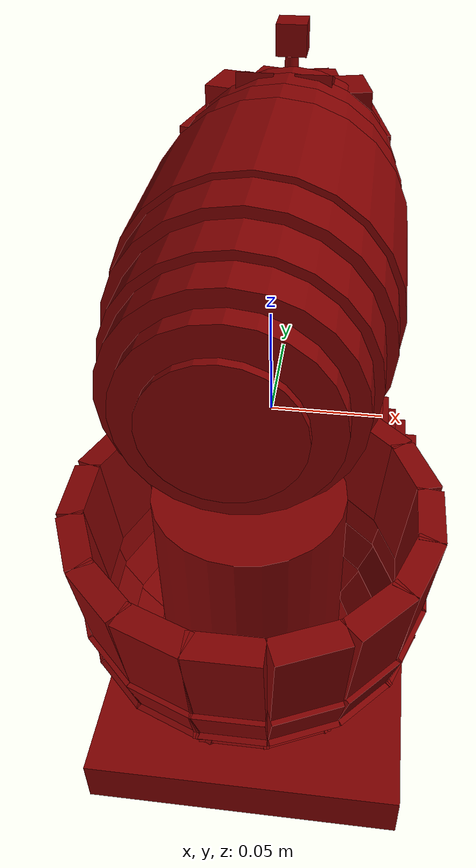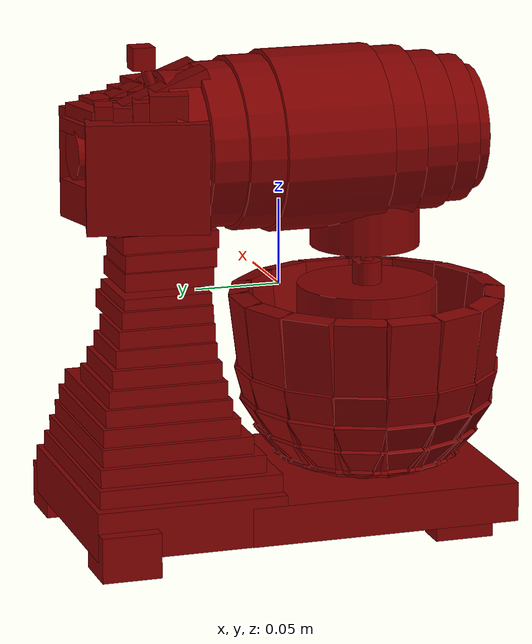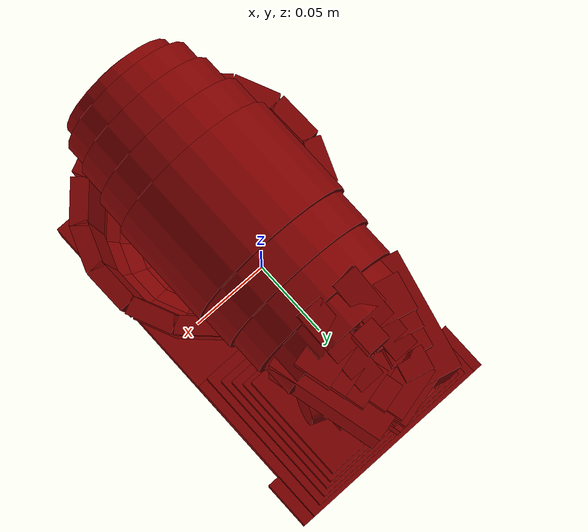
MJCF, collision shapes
<?xml version='1.0' encoding='UTF-8'?>
<mujoco model="model">
  <compiler angle="radian"/>
  <asset>
    <mesh file="visuals/Blender001.obj" name="Blender001_vis"/>
    <mesh file="visuals/Body001.obj" name="Body001_vis"/>
    <mesh file="visuals/Button001.obj" name="Button001_vis"/>
    <mesh file="visuals/Container001.obj" name="Container001_vis"/>
    <mesh file="visuals/Lever001.obj" name="Lever001_vis"/>
    <mesh file="visuals/Lid001.obj" name="Lid001_vis"/>
    <texture file="visuals/T_BC001.png" name="Body001_material" type="2d"/>
    <material name="Body001_material" rgba="1 1 1 1.0" texture="Body001_material" shininess="0.4472135901451111" specular="0.3103448502657381"/>
    <texture file="visuals/T_BC001.png" name="Button001_material" type="2d"/>
    <material name="Button001_material" rgba="1 1 1 1.0" texture="Button001_material" shininess="0.4472135901451111" specular="0.3103448502657381"/>
    <texture file="visuals/T_BC001.png" name="Container001_material" type="2d"/>
    <material name="Container001_material" rgba="1 1 1 1.0" texture="Container001_material" shininess="0.4472135901451111" specular="2"/>
    <texture file="visuals/T_BC001.png" name="Lid001_material" type="2d"/>
    <material name="Lid001_material" rgba="1 1 1 1.0" texture="Lid001_material" shininess="0.4472135901451111" specular="0.3103448502657381"/>
    <texture file="visuals/T_BC001.png" name="Blender001_material" type="2d"/>
    <material name="Blender001_material" rgba="1 1 1 1.0" texture="Blender001_material" shininess="0.4472135901451111" specular="5"/>
    <texture file="visuals/T_BC001.png" name="Lever001_material" type="2d"/>
    <material name="Lever001_material" rgba="1 1 1 1.0" texture="Lever001_material" shininess="0.4472135901451111" specular="0.3103448502657381"/>
  </asset>
  <default>
    <default class="visual">
      <geom conaffinity="0" contype="0" group="1" type="mesh"/>
    </default>
    <default class="collision">
      <geom group="0" rgba="0.5 0 0 0.5"/>
    </default>
    <default class="spawn">
      <geom group="0" rgba="1 1 1 0.5" contype="0" conaffinity="0"/>
      <site group="0" rgba="1 1 1 0.5"/>
    </default>
    <default class="region">
      <geom group="1" conaffinity="0" contype="0" rgba="0 1 0 0"/>
    </default>
  </default>
  <worldbody>
    <body>
      <body name="object">
        <geom mesh="Body001_vis" type="mesh" solimp="0.998 0.998 0.001" solref="0.001 1" density="100" friction="0.95 0.3 0.1" class="visual" material="Body001_material"/>
        <geom class="collision" type="box" pos="0.000905 0.072126 -0.120059" size="0.06909153610467911 0.0555466003715992 0.014421489089727402" quat="1.0 0.0 0.0 0.0"/>
        <geom class="collision" type="box" pos="-0.010174 0.078410 -0.048770" size="0.031024672091007233 0.034848056733608246 0.005275134462863207" quat="1.0 0.0 0.0 0.0"/>
        <geom class="collision" type="box" pos="0.000804 0.070917 -0.100207" size="0.06219308078289032 0.053709082305431366 0.005275134462863207" quat="1.0 0.0 0.0 0.0"/>
        <geom class="collision" type="box" pos="0.000944 0.075807 -0.079277" size="0.05295366048812866 0.04438085854053497 0.005275134462863207" quat="1.0 0.0 0.0 0.0"/>
        <geom class="collision" type="box" pos="0.000867 0.074089 -0.089515" size="0.0570756271481514 0.04852152243256569 0.005275134462863207" quat="1.0 0.0 0.0 0.0"/>
        <geom class="collision" type="box" pos="0.001021 0.078335 -0.068929" size="0.049141526222229004 0.04029778018593788 0.005275134462863207" quat="1.0 0.0 0.0 0.0"/>
        <geom class="collision" type="box" pos="0.001035 0.078834 -0.058850" size="0.045344870537519455 0.037232231348752975 0.005275134462863207" quat="1.0 0.0 0.0 0.0"/>
        <geom class="collision" type="box" pos="-0.009915 0.077224 -0.027860" size="0.02389548346400261 0.02974225953221321 0.005275134462863207" quat="1.0 0.0 0.0 0.0"/>
        <geom class="collision" type="box" pos="-0.010226 0.078037 -0.038126" size="0.02770635485649109 0.032234884798526764 0.005275134462863207" quat="1.0 0.0 0.0 0.0"/>
        <geom class="collision" type="box" pos="-0.010084 0.075793 -0.017594" size="0.02069382555782795 0.028311023488640785 0.005275134462863207" quat="1.0 0.0 0.0 0.0"/>
        <geom class="collision" type="box" pos="0.000938 0.074439 -0.007608" size="0.028137603774666786 0.02695777267217636 0.005275134462863207" quat="1.0 0.0 0.0 0.0"/>
        <geom class="collision" type="box" pos="0.001016 0.073319 0.000814" size="0.024948909878730774 0.025837844237685204 0.0033383138943463564" quat="1.0 0.0 0.0 0.0"/>
        <geom class="collision" type="box" pos="0.000905 -0.043086 -0.123158" size="0.06909153610467911 0.08008985221385956 0.011497527360916138" quat="1.0 0.0 0.0 0.0"/>
        <geom class="collision" type="box" pos="-0.060823 0.110423 -0.130724" size="0.015855111181735992 0.017249327152967453 0.013206470757722855" quat="1.0 0.0 0.0 0.0"/>
        <geom class="collision" type="box" pos="0.062351 0.110423 -0.130724" size="0.015855111181735992 0.017249327152967453 0.013206470757722855" quat="1.0 0.0 0.0 0.0"/>
        <geom class="collision" type="box" pos="0.055976 -0.092045 -0.130724" size="0.009480033069849014 0.017249327152967453 0.013206470757722855" quat="1.0 0.0 0.0 0.0"/>
        <geom class="collision" type="box" pos="-0.054056 -0.092045 -0.130724" size="0.009480033069849014 0.017249327152967453 0.013206470757722855" quat="1.0 0.0 0.0 0.0"/>
        <geom class="collision" type="box" pos="0.055976 -0.092045 -0.130724" size="0.009480033069849014 0.017249327152967453 0.013206470757722855" quat="1.0 0.0 0.0 0.0"/>
        <body name="Button001">
          <joint axis="-0.9254167079925537 0.33682411909103394 -0.1736481934785843" pos="0.028583 0.076961 -0.031992" limited="true" name="Button001_joint" range="0.0 0.003" type="slide" damping="1" frictionloss="1" armature=".01" stiffness="0.5" springref="-0.5"/>
          <geom mesh="Button001_vis" type="mesh" solimp="0.998 0.998 0.001" solref="0.001 1" density="100" friction="0.95 0.3 0.1" class="visual" material="Button001_material"/>
          <geom class="collision" type="cylinder" pos="0.028460 0.076898 -0.032231" size="0.012524952180683613 0.005685003008693457" quat="0.7544064521789551 0.13302239775657654 0.6330222487449646 -0.11161904782056808"/>
        </body>
        <body name="Container001">
          <joint axis="0.0 0.0 1.0" pos="-0.001344 -0.053120 -0.062163" limited="true" name="Container001_joint" range="0.0 0.03" type="slide" damping="1" frictionloss="1" armature=".01" stiffness="0.05"/>
          <geom mesh="Container001_vis" type="mesh" solimp="0.998 0.998 0.001" solref="0.001 1" density="100" friction="0.95 0.3 0.1" class="visual" material="Container001_material"/>
          <geom class="collision" type="box" pos="-0.001344 -0.124219 -0.029368" size="0.014861696399748325 0.005788303446024656 0.022114291787147522" quat="0.06294766813516617 -0.9980168342590332 2.2160424043668768e-16 -8.28914765480975e-24"/>
          <geom class="collision" type="box" pos="-0.001344 -0.122749 -0.059405" size="0.014861696399748325 0.004200310911983252 0.009575771167874336" quat="0.1358821839094162 -0.9907249808311462 2.1998642074232177e-16 -8.494599377826416e-23"/>
          <geom class="collision" type="box" pos="-0.001344 -0.117735 -0.076188" size="0.014861696399748325 0.004200310911983252 0.009575771167874336" quat="0.2822636663913727 -0.9593368768692017 2.130155910493251e-16 -6.397050416368678e-23"/>
          <geom class="collision" type="box" pos="-0.001344 -0.108352 -0.091763" size="0.014861696399748325 0.004200310911983252 0.009575771167874336" quat="0.3630664646625519 -0.931763231754303 2.068930913227832e-16 -5.347705115888792e-23"/>
          <geom class="collision" type="box" pos="-0.001344 -0.095586 -0.103125" size="0.014861696399748325 0.004200309980660677 0.009575771167874336" quat="0.5544174909591675 -0.8322386741638184 1.847941473127063e-16 -6.556123271273409e-23"/>
          <geom class="collision" type="box" pos="0.029932 -0.081845 -0.103125" size="0.014861696399748325 0.004200309980660677 0.009575771167874336" quat="0.5075920820236206 -0.7619489431381226 -0.3347463309764862 0.2229999601840973"/>
          <geom class="collision" type="box" pos="0.051021 -0.101214 -0.029368" size="0.014861696399748325 0.005788303446024656 0.022114291787147522" quat="0.05763139948248863 -0.9137255549430847 -0.4014264643192291 0.025319166481494904"/>
          <geom class="collision" type="box" pos="0.049938 -0.100219 -0.059405" size="0.014861696399748325 0.004200310911983252 0.009575771167874336" quat="0.12440598011016846 -0.9070496559143066 -0.39849328994750977 0.05465516075491905"/>
          <geom class="collision" type="box" pos="0.046245 -0.096828 -0.076188" size="0.014861696399748325 0.004200310911983252 0.009575771167874336" quat="0.25842416286468506 -0.8783124089241028 -0.3858684003353119 0.11353327333927155"/>
          <geom class="collision" type="box" pos="0.039335 -0.090481 -0.091763" size="0.014861696399748325 0.004200310911983252 0.009575771167874336" quat="0.3324023187160492 -0.8530676960945129 -0.3747776448726654 0.1460341215133667"/>
          <geom class="collision" type="box" pos="0.053883 -0.052365 -0.091763" size="0.014861696399748325 0.004200310911983252 0.009575771167874336" quat="0.2549673020839691 -0.6543397307395935 -0.6633414626121521 0.2584748864173889"/>
          <geom class="collision" type="box" pos="0.063265 -0.052237 -0.076188" size="0.014861696399748325 0.004200310911983252 0.009575771167874336" quat="0.19822260737419128 -0.6737037897109985 -0.682971715927124 0.2009495049715042"/>
          <geom class="collision" type="box" pos="0.068278 -0.052169 -0.059405" size="0.014861696399748325 0.004200310911983252 0.009575771167874336" quat="0.09542486071586609 -0.6957464218139648 -0.7053175568580627 0.09673759341239929"/>
          <geom class="collision" type="box" pos="0.069749 -0.052149 -0.029368" size="0.014861696399748325 0.005788303446024656 0.022114291787147522" quat="0.04420587420463562 -0.700867235660553 -0.7105087637901306 0.04481399804353714"/>
          <geom class="collision" type="box" pos="0.041118 -0.052540 -0.103125" size="0.014861696399748325 0.004200309980660677 0.009575771167874336" quat="0.389344722032547 -0.5844477415084839 -0.5924883484840393 0.3947012424468994"/>
          <geom class="collision" type="box" pos="0.027994 -0.022418 -0.103125" size="0.014861696399748325 0.004200309980660677 0.009575771167874336" quat="0.20633824169635773 -0.30973535776138306 -0.7724540829658508 0.5145903825759888"/>
          <geom class="collision" type="box" pos="0.047777 -0.001717 -0.029368" size="0.014861696399748325 0.005788303446024656 0.022114291787147522" quat="0.02342754602432251 -0.3714331388473511 -0.9263233542442322 0.0584261491894722"/>
          <geom class="collision" type="box" pos="0.046760 -0.002780 -0.059405" size="0.014861696399748325 0.004200310911983252 0.009575771167874336" quat="-0.05057153105735779 0.36871933937072754 0.9195553064346313 -0.126121386885643"/>
          <geom class="collision" type="box" pos="0.043297 -0.006405 -0.076188" size="0.014861696399748325 0.004200310911983252 0.009575771167874336" quat="0.10505060106515884 -0.35703763365745544 -0.8904219269752502 0.26198717951774597"/>
          <geom class="collision" type="box" pos="0.036814 -0.013188 -0.091763" size="0.014861696399748325 0.004200310911983252 0.009575771167874336" quat="-0.13512299954891205 0.3467754125595093 0.8648290038108826 -0.33698570728302"/>
          <geom class="collision" type="box" pos="0.019019 -0.001779 -0.091763" size="0.014861696399748325 0.004200310911983252 0.009575771167874336" quat="-0.06814071536064148 0.1748742014169693 0.9152055978775024 -0.35661545395851135"/>
          <geom class="collision" type="box" pos="0.022479 0.006943 -0.076188" size="0.014861696399748325 0.004200310911983252 0.009575771167874336" quat="-0.052975501865148544 0.18004927039146423 0.942289412021637 -0.27724817395210266"/>
          <geom class="collision" type="box" pos="0.024327 0.011604 -0.059405" size="0.014861696399748325 0.004200310911983252 0.009575771167874336" quat="0.02550266869366169 -0.18594017624855042 -0.9731197953224182 0.13346806168556213"/>
          <geom class="collision" type="box" pos="0.024870 0.012971 -0.029369" size="0.014861696399748325 0.005788303446024656 0.022114291787147522" quat="0.011814260855317116 -0.18730878829956055 -0.9802820682525635 0.06182962656021118"/>
          <geom class="collision" type="box" pos="0.014313 -0.013646 -0.103125" size="0.014861696399748325 0.004200309980660677 0.009575771167874336" quat="-0.1040535569190979 0.15619543194770813 0.8174498677253723 -0.5445654988288879"/>
          <geom class="collision" type="box" pos="-0.001554 -0.010655 -0.103125" size="0.014861696399748325 0.004200309980660677 0.009575771167874336" quat="0.0013710921630263329 -0.002058016834780574 0.8322361707687378 -0.554415762424469"/>
          <geom class="collision" type="box" pos="-0.001696 0.017979 -0.029369" size="0.014861696399748325 0.005788303446024656 0.022114291787147522" quat="-0.00015559075109194964 0.002468019025400281 -0.9980137348175049 0.06294814497232437"/>
          <geom class="collision" type="box" pos="-0.001688 0.016508 -0.059405" size="0.014861696399748325 0.004200310911983252 0.009575771167874336" quat="-0.0003359524707775563 0.0024499923456460238 -0.9907218813896179 0.1358824521303177"/>
          <geom class="collision" type="box" pos="-0.001664 0.011495 -0.076188" size="0.014861696399748325 0.004200310911983252 0.009575771167874336" quat="0.0006980891921557486 -0.00237234216183424 0.9593337774276733 -0.28226324915885925"/>
          <geom class="collision" type="box" pos="-0.001617 0.002111 -0.091763" size="0.014861696399748325 0.004200310911983252 0.009575771167874336" quat="-0.000897764868568629 0.00230420078150928 -0.9317601323127747 0.36306604743003845"/>
          <geom class="collision" type="box" pos="-0.022401 -0.002059 -0.091763" size="0.014861696399748325 0.004200310911983252 0.009575771167874336" quat="-0.07055433094501495 0.1810682713985443 -0.9140002131462097 0.3561460077762604"/>
          <geom class="collision" type="box" pos="-0.025979 0.006615 -0.076188" size="0.014861696399748325 0.004200310911983252 0.009575771167874336" quat="-0.05485193431377411 0.18642659485340118 -0.9410483837127686 0.27688324451446533"/>
          <geom class="collision" type="box" pos="-0.027890 0.011250 -0.059405" size="0.014861696399748325 0.004200310911983252 0.009575771167874336" quat="-0.02640584111213684 0.19252608716487885 -0.9718382358551025 0.13329249620437622"/>
          <geom class="collision" type="box" pos="-0.028451 0.012610 -0.029369" size="0.014861696399748325 0.005788303446024656 0.022114291787147522" quat="0.012232762761414051 -0.19394321739673615 0.9789910912513733 -0.061748433858156204"/>
          <geom class="collision" type="box" pos="-0.017534 -0.013862 -0.103125" size="0.014861696399748325 0.004200309980660677 0.009575771167874336" quat="0.10773929953575134 -0.16172783076763153 0.8163732886314392 -0.5438483357429504"/>
          <geom class="collision" type="box" pos="-0.031329 -0.023050 -0.103125" size="0.014861696399748325 0.004200309980660677 0.009575771167874336" quat="0.21180303394794464 -0.31793850660324097 0.7691140174865723 -0.5123653411865234"/>
          <geom class="collision" type="box" pos="-0.051548 -0.002774 -0.029369" size="0.014861696399748325 0.005788303446024656 0.022114291787147522" quat="0.02404821664094925 -0.3812703490257263 0.9223179221153259 -0.0581740103662014"/>
          <geom class="collision" type="box" pos="-0.050509 -0.003815 -0.059405" size="0.014861696399748325 0.004200310911983252 0.009575771167874336" quat="-0.05191101133823395 0.37848442792892456 -0.9155792593955994 0.1255764216184616"/>
          <geom class="collision" type="box" pos="-0.046969 -0.007365 -0.076188" size="0.014861696399748325 0.004200310911983252 0.009575771167874336" quat="-0.10783275961875916 0.3664934039115906 -0.8865717649459839 0.2608547508716583"/>
          <geom class="collision" type="box" pos="-0.040344 -0.014010 -0.091763" size="0.014861696399748325 0.004200310911983252 0.009575771167874336" quat="0.13870200514793396 -0.3559594452381134 0.8610893487930298 -0.33552905917167664"/>
          <geom class="collision" type="box" pos="-0.052617 -0.032586 -0.091763" size="0.014861696399748325 0.004200310911983252 0.009575771167874336" quat="0.2034848928451538 -0.5222156643867493 0.7716687321662903 -0.30068597197532654"/>
          <geom class="collision" type="box" pos="-0.061328 -0.029098 -0.076188" size="0.014861696399748325 0.004200310911983252 0.009575771167874336" quat="0.15819789469242096 -0.5376695990562439 0.7945050001144409 -0.23376624286174774"/>
          <geom class="collision" type="box" pos="-0.065982 -0.027234 -0.059405" size="0.014861696399748325 0.004200310911983252 0.009575771167874336" quat="0.07615723460912704 -0.5552616119384766 0.8205000162124634 -0.11253602802753448"/>
          <geom class="collision" type="box" pos="-0.067348 -0.026687 -0.029369" size="0.014861696399748325 0.005788303446024656 0.022114291787147522" quat="-0.03528023138642311 0.5593484044075012 -0.8265390396118164 0.052133094519376755"/>
          <geom class="collision" type="box" pos="-0.040766 -0.037333 -0.103125" size="0.014861696399748325 0.004200310446321964 0.009575771167874336" quat="0.31072869896888733 -0.4664364457130432 0.68924480676651 -0.4591583013534546"/>
          <geom class="collision" type="box" pos="-0.043798 -0.054107 -0.103125" size="0.014861696399748325 0.004200309980660677 0.009575771167874336" quat="0.3965601623058319 -0.5952785015106201 0.5816054344177246 -0.3874514698982239"/>
          <geom class="collision" type="box" pos="-0.072425 -0.054772 -0.029369" size="0.014861696399748325 0.005788303446024656 0.022114291787147522" quat="0.04502575099468231 -0.7138552665710449 0.6974583268165588 -0.04399153217673302"/>
          <geom class="collision" type="box" pos="-0.070954 -0.054738 -0.059405" size="0.014861696399748325 0.004200310911983252 0.009575771167874336" quat="0.0971938967704773 -0.7086394429206848 0.6923624873161316 -0.09496141225099564"/>
          <geom class="collision" type="box" pos="-0.065942 -0.054621 -0.076188" size="0.014861696399748325 0.004200310911983252 0.009575771167874336" quat="0.2018965184688568 -0.686188280582428 0.6704269647598267 -0.1972591131925583"/>
          <geom class="collision" type="box" pos="-0.056561 -0.054403 -0.091763" size="0.014861696399748325 0.004200310911983252 0.009575771167874336" quat="0.25969287753105164 -0.6664654016494751 0.6511571407318115 -0.25372788310050964"/>
          <geom class="collision" type="box" pos="-0.051765 -0.075666 -0.091763" size="0.014861696399748325 0.004200310911983252 0.009575771167874336" quat="0.3046526312828064 -0.7818480730056763 0.5068483352661133 -0.19749705493450165"/>
          <geom class="collision" type="box" pos="-0.060331 -0.079496 -0.076188" size="0.014861696399748325 0.004200310911983252 0.009575771167874336" quat="0.23685023188591003 -0.8049854636192322 0.5218476057052612 -0.15354281663894653"/>
          <geom class="collision" type="box" pos="-0.064908 -0.081542 -0.059405" size="0.014861696399748325 0.004200310911983252 0.009575771167874336" quat="0.11402078717947006 -0.8313233852386475 0.538922131061554 -0.07391627132892609"/>
          <geom class="collision" type="box" pos="-0.066250 -0.082143 -0.029369" size="0.014861696399748325 0.005788303446024656 0.02211429364979267" quat="0.05282099172472954 -0.8374422788619995 0.5428884029388428 -0.03424224257469177"/>
          <geom class="collision" type="box" pos="-0.040111 -0.070454 -0.103125" size="0.014861696399748325 0.004200309980660677 0.009575771167874336" quat="0.465215265750885 -0.6983368992805481 0.4527105987071991 -0.301584929227829"/>
          <geom class="collision" type="box" pos="-0.030799 -0.083710 -0.103125" size="0.014861696399748325 0.004200309980660677 0.009575771167874336" quat="0.5141980051994324 -0.7718653082847595 0.311199814081192 -0.20731379091739655"/>
          <geom class="collision" type="box" pos="-0.050660 -0.104337 -0.029369" size="0.014861696399748325 0.005788303446024656 0.022114291787147522" quat="0.058382660150527954 -0.9256171584129333 0.373189240694046 -0.023538652807474136"/>
          <geom class="collision" type="box" pos="-0.049639 -0.103277 -0.059405" size="0.014861696399748325 0.004200310911983252 0.009575771167874336" quat="0.12602625787258148 -0.9188542366027832 0.370462566614151 -0.050811123102903366"/>
          <geom class="collision" type="box" pos="-0.046162 -0.099666 -0.076188" size="0.014861696399748325 0.004200310911983252 0.009575771167874336" quat="0.2617884576320648 -0.8897429704666138 0.35872548818588257 -0.10554757714271545"/>
          <geom class="collision" type="box" pos="-0.039654 -0.092906 -0.091763" size="0.014861696399748325 0.004200310911983252 0.009575771167874336" quat="0.33672982454299927 -0.8641694188117981 0.3484147787094116 -0.13576233386993408"/>
          <geom class="collision" type="box" pos="-0.021606 -0.104501 -0.091763" size="0.014861696399748325 0.004200310911983252 0.009575771167874336" quat="0.3566835820674896 -0.9153778553009033 0.17396840453147888 -0.06778804212808609"/>
          <geom class="collision" type="box" pos="-0.025048 -0.113230 -0.076188" size="0.014861696399748325 0.004200310911983252 0.009575771167874336" quat="0.27730149030685425 -0.9424667954444885 0.1791166216135025 -0.05270139127969742"/>
          <geom class="collision" type="box" pos="-0.026888 -0.117894 -0.059405" size="0.014861696399748325 0.004200310911983252 0.009575771167874336" quat="0.13349434733390808 -0.9733030796051025 0.18497751653194427 -0.025370797142386436"/>
          <geom class="collision" type="box" pos="-0.027427 -0.119263 -0.029369" size="0.014861696399748325 0.005788303446024656 0.022114291787147522" quat="0.061842385679483414 -0.980466902256012 0.18633858859539032 -0.011753199622035027"/>
          <geom class="collision" type="box" pos="-0.016923 -0.092625 -0.103125" size="0.014861696399748325 0.004200309980660677 0.009575771167874336" quat="0.5446682572364807 -0.8176040053367615 0.15538640320301056 -0.10351467877626419"/>
          <geom class="collision" type="box" pos="0.015904 -0.091925 -0.103125" size="0.014861696399748325 0.004200309980660677 0.009575771167874336" quat="0.5423372387886047 -0.8141054511070251 -0.1727825403213501 0.11510352790355682"/>
          <geom class="collision" type="box" pos="0.027535 -0.118090 -0.029369" size="0.014861696399748325 0.005788303446024656 0.022114291787147522" quat="0.06157786399126053 -0.9762712717056274 -0.20719988644123077 0.013069038279354572"/>
          <geom class="collision" type="box" pos="0.026937 -0.116746 -0.059405" size="0.014861696399748325 0.004200310911983252 0.009575771167874336" quat="0.13292323052883148 -0.9691382050514221 -0.20568598806858063 0.028211092576384544"/>
          <geom class="collision" type="box" pos="0.024901 -0.112165 -0.076188" size="0.014861696399748325 0.004200310911983252 0.009575771167874336" quat="0.2761147618293762 -0.938433825969696 -0.19916951656341553 0.058601509779691696"/>
          <geom class="collision" type="box" pos="0.021090 -0.103591 -0.091763" size="0.014861696399748325 0.004200310911983252 0.009575771167874336" quat="0.3551572561264038 -0.9114607572555542 -0.1934448480606079 0.07537718117237091"/>
          <geom class="collision" type="box" pos="0.050231 -0.072883 -0.091763" size="0.014861696399748325 0.004200310911983252 0.009575771167874336" quat="0.29915276169776917 -0.7677323222160339 -0.5279852747917175 0.2057334929704666"/>
          <geom class="collision" type="box" pos="0.058993 -0.076240 -0.076188" size="0.014861696399748325 0.004200310911983252 0.009575771167874336" quat="0.2325744777917862 -0.7904520034790039 -0.5436100959777832 0.1599462330341339"/>
          <geom class="collision" type="box" pos="0.063675 -0.078034 -0.059405" size="0.014861696399748325 0.004200310911983252 0.009575771167874336" quat="0.11196264624595642 -0.816314697265625 -0.5613963603973389 0.07699901610612869"/>
          <geom class="collision" type="box" pos="0.065048 -0.078560 -0.029369" size="0.014861696399748325 0.005788303446024656 0.022114291787147522" quat="0.051867738366127014 -0.8223228454589844 -0.5655285120010376 0.03567052260041237"/>
          <geom class="collision" type="box" pos="0.038310 -0.068315 -0.103125" size="0.014861696399748325 0.004200309980660677 0.009575771167874336" quat="0.456816166639328 -0.6857289671897888 -0.47158995270729065 0.31416189670562744"/>
          <geom class="collision" type="box" pos="0.037437 -0.035817 -0.103125" size="0.014861696399748325 0.004200309980660677 0.009575771167874336" quat="0.30177420377731323 -0.4529947340488434 -0.6981526017189026 0.4650925099849701"/>
          <geom class="collision" type="box" pos="0.063586 -0.024150 -0.029369" size="0.014861696399748325 0.005788303446024656 0.022114291787147522" quat="0.03426405414938927 -0.5432288646697998 -0.8372214436531067 0.052807439118623734"/>
          <geom class="collision" type="box" pos="0.062243 -0.024749 -0.059405" size="0.014861696399748325 0.004200310911983252 0.009575771167874336" quat="-0.07396280020475388 0.5392598509788513 0.8311042785644531 -0.11399120837450027"/>
          <geom class="collision" type="box" pos="0.057664 -0.026792 -0.076188" size="0.014861698262393475 0.004200310911983252 0.009575771167874336" quat="0.1536395251750946 -0.5221751928329468 -0.8047728538513184 0.23678818345069885"/>
          <geom class="collision" type="box" pos="0.049095 -0.030615 -0.091763" size="0.014861696399748325 0.004200310911983252 0.009575771167874336" quat="0.19762131571769714 -0.5071663856506348 -0.7816415429115295 0.3045727014541626"/>
          <geom class="collision" type="cylinder" pos="-0.001344 -0.053120 -0.107056" size="0.03230029344558716 0.0034746502060443163" quat="1.0 0.0 0.0 0.0"/>
        </body>
        <body name="Lid001">
          <joint axis="-1.0 0.0 0.0" pos="0.000070 0.093854 0.022307" limited="true" name="Lid001_joint" range="0.0 1.5707963267948966" type="hinge" damping="1" frictionloss="1" armature=".01" stiffness="0.05"/>
          <geom mesh="Lid001_vis" type="mesh" solimp="0.998 0.998 0.001" solref="0.001 1" density="100" friction="0.95 0.3 0.1" class="visual" material="Lid001_material"/>
          <geom class="collision" type="box" pos="0.000977 0.069852 0.022933" size="0.020321423187851906 0.026907220482826233 0.005275134462863207" quat="1.0 0.0 0.0 0.0"/>
          <geom class="collision" type="box" pos="0.001042 0.071699 0.013017" size="0.02271942049264908 0.02609708532691002 0.005275134462863207" quat="1.0 0.0 0.0 0.0"/>
          <geom class="collision" type="box" pos="0.000899 0.068977 0.033044" size="0.016899406909942627 0.028106221929192543 0.005275134462863207" quat="1.0 0.0 0.0 0.0"/>
          <geom class="collision" type="box" pos="0.000815 0.073457 0.045876" size="0.01588188111782074 0.028106221929192543 0.007841641083359718" quat="1.0 0.0 0.0 0.0"/>
          <geom class="collision" type="box" pos="-0.027195 0.085742 0.075276" size="0.011400355957448483 0.034505292773246765 0.031412914395332336" quat="0.9928795695304871 0.0 -0.0 -0.11912240087985992"/>
          <geom class="collision" type="box" pos="0.024646 0.085742 0.075276" size="0.011400355957448483 0.034505292773246765 0.031412914395332336" quat="0.9928795695304871 0.0 0.0 0.11912237107753754"/>
          <geom class="collision" type="box" pos="0.017573 0.071236 0.112663" size="0.01523706503212452 0.01082881260663271 0.008603304624557495" quat="0.9928795695304871 0.0 0.0 0.11912237107753754"/>
          <geom class="collision" type="box" pos="0.013970 0.094466 0.109252" size="0.011692360043525696 0.0075026764534413815 0.00519217737019062" quat="0.9928795695304871 0.0 0.0 0.11912237107753754"/>
          <geom class="collision" type="box" pos="0.015440 0.083653 0.110727" size="0.013262245804071426 0.0075225830078125 0.0066665830090641975" quat="0.9928795695304871 0.0 0.0 0.11912237107753754"/>
          <geom class="collision" type="box" pos="0.009857 0.104718 0.109252" size="0.008138880133628845 0.006831272505223751 0.00519217737019062" quat="0.9928795695304871 0.0 0.0 0.11912237107753754"/>
          <geom class="collision" type="box" pos="-0.000413 0.108025 0.057455" size="0.016720132902264595 0.014281469397246838 0.010994031094014645" quat="0.9928795695304871 0.0 0.0 0.11912237107753754"/>
          <geom class="collision" type="box" pos="-0.000413 0.109945 0.107873" size="0.01541457325220108 0.008918901905417442 0.00381322018802166" quat="0.9928795695304871 0.0 0.0 0.11912237107753754"/>
          <geom class="collision" type="box" pos="-0.000413 0.113544 0.099880" size="0.01541457325220108 0.008918901905417442 0.00381322018802166" quat="0.9928795695304871 0.0 0.0 0.11912237107753754"/>
          <geom class="collision" type="box" pos="-0.011393 0.104745 0.109252" size="0.008079694584012032 0.006844376679509878 0.00519217737019062" quat="0.9928795695304871 0.0 -0.0 -0.11912240087985992"/>
          <geom class="collision" type="box" pos="-0.016921 0.083653 0.110727" size="0.013262245804071426 0.0075225830078125 0.0066665830090641975" quat="0.9928795695304871 0.0 -0.0 -0.11912240087985992"/>
          <geom class="collision" type="box" pos="-0.015451 0.094466 0.109252" size="0.011692360043525696 0.0075026764534413815 0.00519217737019062" quat="0.9928795695304871 0.0 -0.0 -0.11912240087985992"/>
          <geom class="collision" type="box" pos="-0.019055 0.071236 0.112663" size="0.01523706503212452 0.01082881260663271 0.008603304624557495" quat="0.9928795695304871 0.0 -0.0 -0.11912240087985992"/>
          <geom class="collision" type="box" pos="-0.012751 0.072337 0.118177" size="0.007635682355612516 0.026907220482826233 0.005275134462863207" quat="0.9845778346061707 -0.17494721710681915 3.884608570521734e-17 7.767962243087427e-24"/>
          <geom class="collision" type="box" pos="0.010969 0.072337 0.118177" size="0.007635682355612516 0.026907220482826233 0.005275134462863207" quat="0.9845778346061707 -0.17494721710681915 3.884608570521734e-17 7.767962243087427e-24"/>
          <geom class="collision" type="cylinder" pos="0.001112 0.061951 0.084684" size="0.043540891259908676 0.009288307279348373" quat="0.7071067094802856 0.7071068286895752 0.0 0.0"/>
          <geom class="collision" type="cylinder" pos="-0.000125 0.118644 0.084684" size="0.014777465723454952 0.0031523846555501223" quat="0.7071067094802856 0.7071068286895752 0.0 0.0"/>
          <geom class="collision" type="cylinder" pos="0.001112 0.042065 0.084684" size="0.04723939672112465 0.010077286511659622" quat="0.7071067094802856 0.7071068286895752 0.0 0.0"/>
          <geom class="collision" type="cylinder" pos="0.001112 0.021146 0.084684" size="0.0498279444873333 0.010629485361278057" quat="0.7071067094802856 0.7071068286895752 0.0 0.0"/>
          <geom class="collision" type="cylinder" pos="0.001112 -0.021418 0.084684" size="0.052161362022161484 0.03163669630885124" quat="0.7071067094802856 0.7071068286895752 0.0 0.0"/>
          <geom class="collision" type="cylinder" pos="0.001112 -0.062058 0.084684" size="0.0498279444873333 0.010629485361278057" quat="0.7071067094802856 0.7071068286895752 0.0 0.0"/>
          <geom class="collision" type="cylinder" pos="0.001112 -0.082368 0.084684" size="0.045842718333005905 0.009779341518878937" quat="0.7071067094802856 0.7071068286895752 0.0 0.0"/>
          <geom class="collision" type="cylinder" pos="0.001113 -0.108032 0.084684" size="0.036301977932453156 0.007201514672487974" quat="0.7071067094802856 0.7071068286895752 0.0 0.0"/>
          <geom class="collision" type="cylinder" pos="-0.000244 -0.051864 0.033841" size="0.03184203431010246 0.014139351435005665" quat="1.0 0.0 0.0 0.0"/>
          <geom class="collision" type="cylinder" pos="-0.000155 -0.112133 0.083399" size="0.026492083445191383 0.006463841535151005" quat="0.7071067094802856 0.7071068286895752 0.0 0.0"/>
          <geom class="collision" type="box" pos="0.001042 0.076419 0.098955" size="0.02271942049264908 0.030817240476608276 0.005275134462863207" quat="1.0 0.0 0.0 0.0"/>
          <geom class="collision" type="cylinder" pos="0.001112 -0.098482 0.084684" size="0.04256439581513405 0.008443840779364109" quat="0.7071067094802856 0.7071068286895752 0.0 0.0"/>
          <body name="Blender001">
            <joint axis="0.0 0.0 -1.0" pos="-0.002807 -0.052470 -0.031182" limited="false" name="Blender001_joint" range="0 360" type="hinge" damping="1" frictionloss="1" armature=".01" stiffness="0.05"/>
            <geom mesh="Blender001_vis" type="mesh" solimp="0.998 0.998 0.001" solref="0.001 1" density="100" friction="0.95 0.3 0.1" class="visual" material="Blender001_material"/>
            <geom class="collision" type="cylinder" pos="-0.002807 -0.052470 0.001968" size="0.00852424930781126 0.00852424930781126" quat="1.0 0.0 0.0 0.0"/>
            <geom class="collision" type="cylinder" pos="-0.002807 -0.052470 0.014708" size="0.0038067596033215523 0.004724207799881697" quat="1.0 0.0 0.0 0.0"/>
            <geom class="collision" type="cylinder" pos="-0.002807 -0.052470 -0.043452" size="0.04068989306688309 0.04068989306688309" quat="1.0 0.0 0.0 0.0"/>
          </body>
          <body name="Lever001">
            <joint axis="-1.2050927992127818e-17 0.9424110054969788 -0.334457129240036" pos="-0.000805 0.074131 0.116072" limited="true" name="Lever001_joint" range="0.0 0.027000000000000003" type="slide" damping="1" frictionloss="1" armature=".01" stiffness="0.1" springref="-0.1"/>
            <geom mesh="Lever001_vis" type="mesh" solimp="0.998 0.998 0.001" solref="0.001 1" density="100" friction="0.95 0.3 0.1" class="visual" material="Lever001_material"/>
            <geom class="collision" type="box" pos="-0.000702 0.081257 0.137330" size="0.006541634909808636 0.006541634909808636 0.006541634909808636" quat="1.0 0.0 0.0 0.0"/>
            <geom class="collision" type="cylinder" pos="-0.000702 0.076553 0.123353" size="0.0029541158583015203 0.008580333553254604" quat="0.9873127341270447 -0.15878762304782867 -3.5257935026639914e-17 -9.256267064353101e-25"/>
          </body>
        </body>
        <geom class="region" name="reg_main" type="box" pos="0.0011565000000000047 0.0029689999999999925 -0.0050705000000000056" size="0.0747935 0.12468399999999999 0.1391625"/>
      </body>
    </body>
  </worldbody>
  <actuator>
    <motor name="Button001_joint_actuator" joint="Button001_joint" gear="0.5"/>
    <motor name="Container001_joint_actuator" joint="Container001_joint" gear="10"/>
    <motor name="Lid001_joint_actuator" joint="Lid001_joint" gear="10"/>
    <motor name="Blender001_joint_actuator" joint="Blender001_joint" gear="10"/>
    <motor name="Lever001_joint_actuator" joint="Lever001_joint" gear="1.5"/>
  </actuator>
</mujoco>
